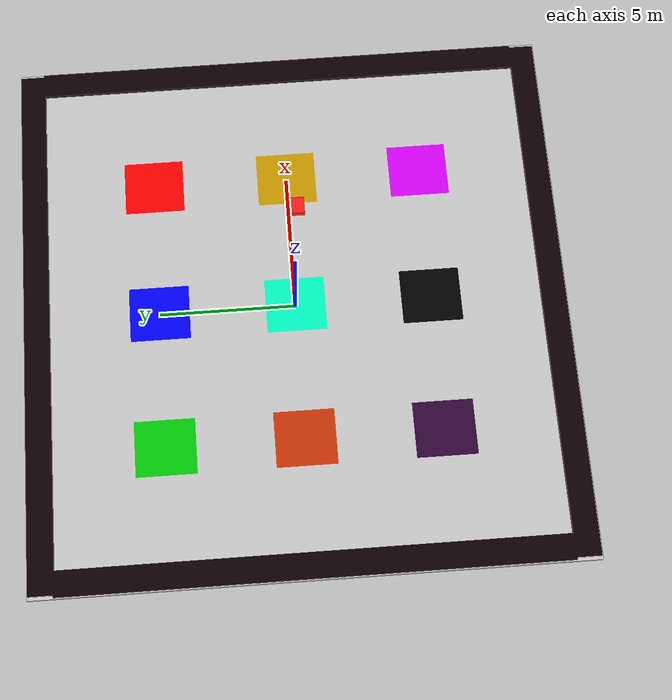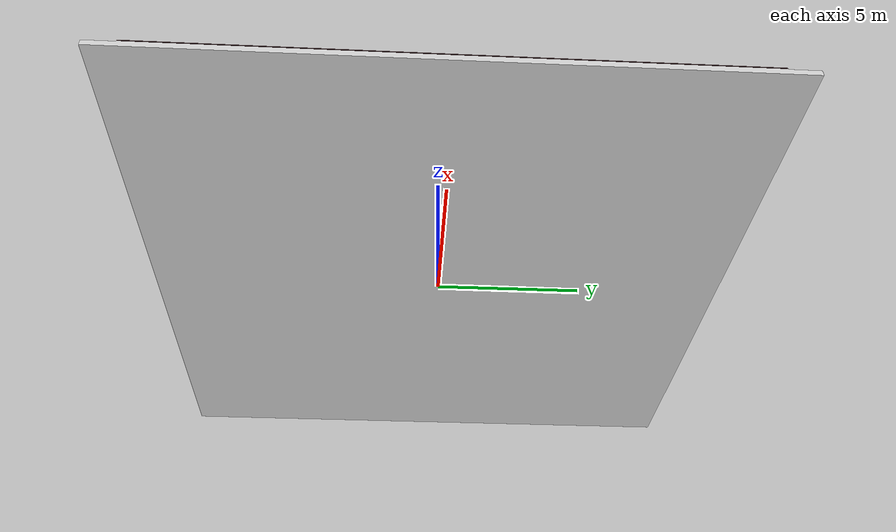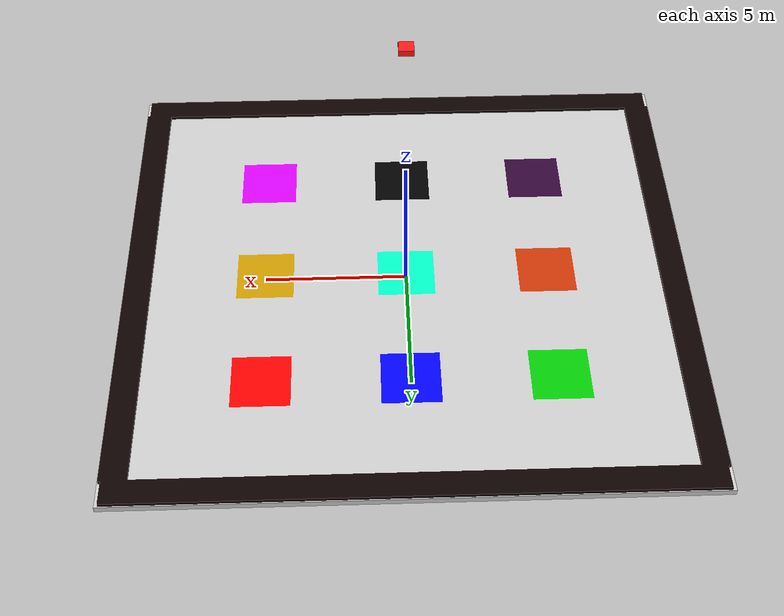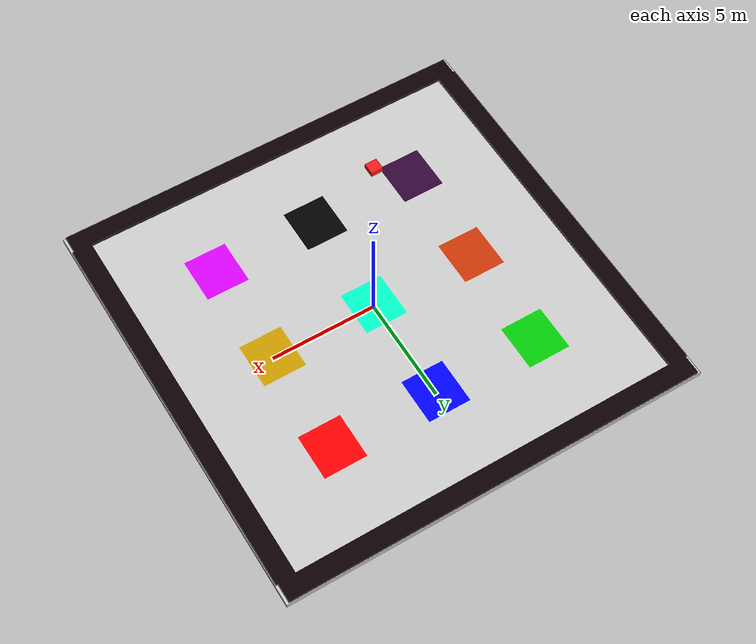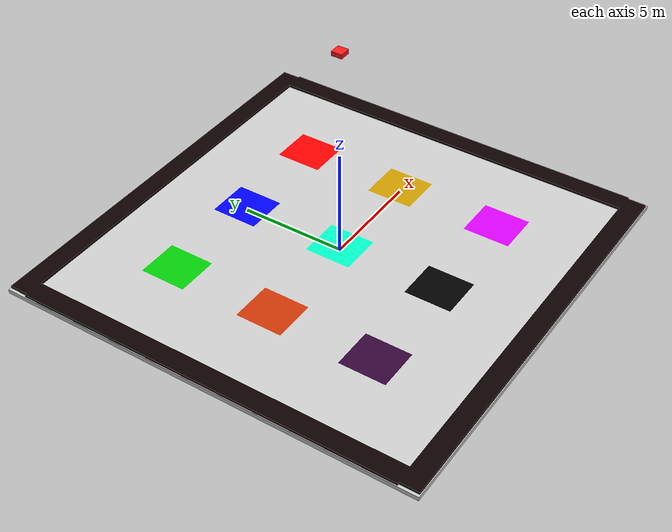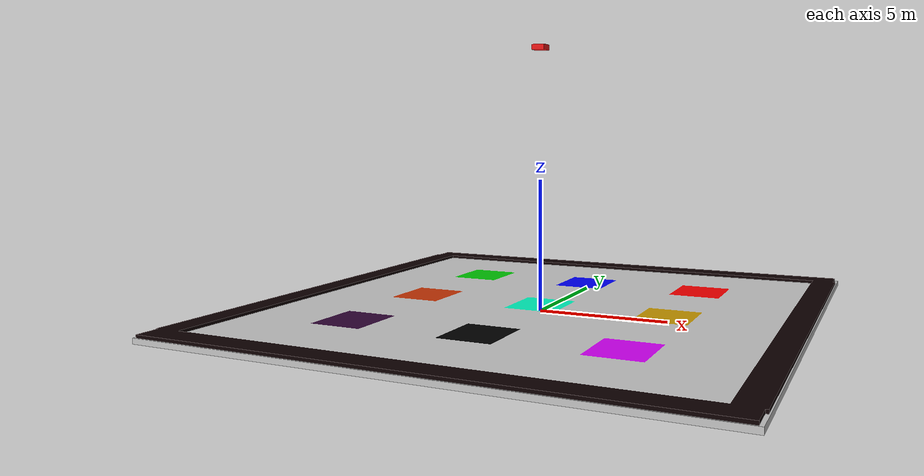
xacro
<?xml version="1.0"?>

<robot name="grid_base" xmlns:xacro="http://www.ros.org/wiki/xacro">

	<!-- Import summit XL wheels -->
	<xacro:include filename="$(find bot_gazebo)/urdf/grid.urdf.xacro" />

	<xacro:macro name="grid_full">
		<xacro:grid_base/>
  	</xacro:macro>

   <xacro:grid_base/>

</robot>

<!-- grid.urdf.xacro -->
<robot name="grid_base" xmlns:xacro="http://www.ros.org/wiki/xacro">

  <xacro:property name="M_PI" value="3.1415926535897931" />
  <xacro:macro name="grid_base">

  <link name="world"/>

  <joint name="base_fixed" type="fixed">
    <parent link="world"/>
    <child link="base"/>
  </joint>

  <!-- BASE_LINK -->
  <link name="base">
    <inertial>
      <mass value="100.0" />
      <origin xyz="0 0 0.1" />
      <inertia  ixx="100.0" ixy="0.000"  ixz="0.0"  iyy="100.0"  iyz="0.0"  izz="100.0" />
    </inertial>

    <visual>
       <origin xyz="0 0 0.1" rpy="0 0 0" />
       <geometry>
	     <mesh filename="package://bot_gazebo/mesh/grid.dae"/>
       </geometry>

    </visual>

    <collision>
       <origin xyz="0 0 0.1" rpy="0 0 0 " />
       <geometry>
         <mesh filename="package://bot_gazebo/mesh/grid.dae"/>
       </geometry>
    </collision>

  </link>

  <link name="camera_link">

      <inertial>
        <mass value="0.001" />
        <origin rpy="0 0 0" xyz="0.0 0.0 0.0"/>
        <inertia ixx="0.0001" ixy="0" ixz="0" iyy="0.0001" iyz="0" izz="0.0001" />
      </inertial>

      <collision>
        <origin rpy="0 0 0" xyz="0.0 0.0 0.0"/>
        <geometry>
          <box size="0.5 0.5 0.2"/>
        </geometry>
      </collision>

      <visual>
        <origin rpy="0 0 0" xyz="0.0 0.0 5.0"/>
        <geometry>
          <box size="0.5 0.5 0.2"/>
        </geometry>
        <material name="grey">
            <color rgba="1.0 0.1 0.1 1.0"/>
        </material>
      </visual>
  </link>

    <joint name="camera_joint" type="fixed">
        <parent link="world"/>
        <child link="camera_link"/>
        <origin xyz="0 0 5" rpy="0 0 0"/>
    </joint>

    <gazebo reference="camera_link">
      <sensor type="camera" name="camera_sensor">
        <update_rate>30.0</update_rate>
        <camera>
          <pose>0.035 0 0.078 0 ${-M_PI/2} 0</pose>
          <horizontal_fov>${85 * M_PI/180.0}</horizontal_fov>
          <image>
            <format>R8G8B8</format>
            <width>1920</width>
            <height>1080</height>
          </image>
          <clip>
            <near>0.01</near>
            <far>100</far>
          </clip>
        </camera>

        <plugin name="camera_camera_controller" filename="libgazebo_ros_camera.so">
          <alwaysOn>true</alwaysOn>
          <updateRate>0.0</updateRate>
          <cameraName>/camera</cameraName>
          <imageTopicName>image_raw</imageTopicName>
          <cameraInfoTopicName>camera_info</cameraInfoTopicName>
          <frameName>camera_link</frameName>
          <hackBaseline>0.07</hackBaseline>
          <distortionK1>0.0</distortionK1>
          <distortionK2>0.0</distortionK2>
          <distortionK3>0.0</distortionK3>
          <distortionT1>0.0</distortionT1>
          <distortionT2>0.0</distortionT2>
        </plugin>
      </sensor>
    </gazebo>
  </xacro:macro>

</robot>
